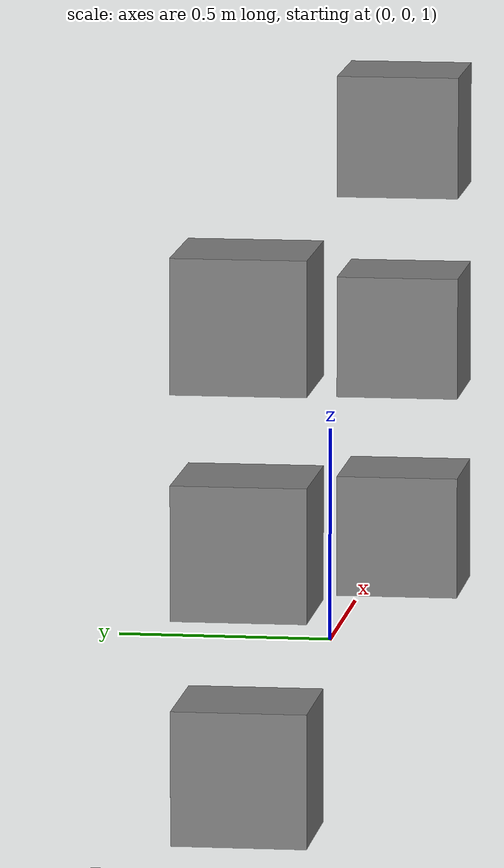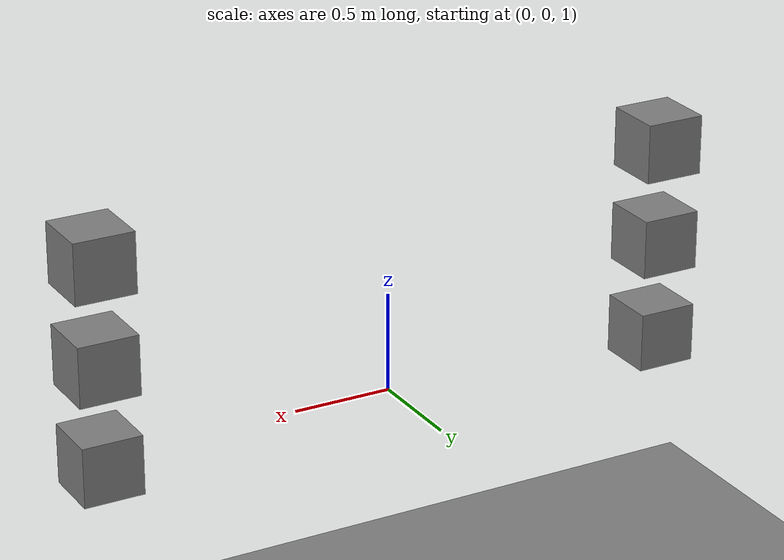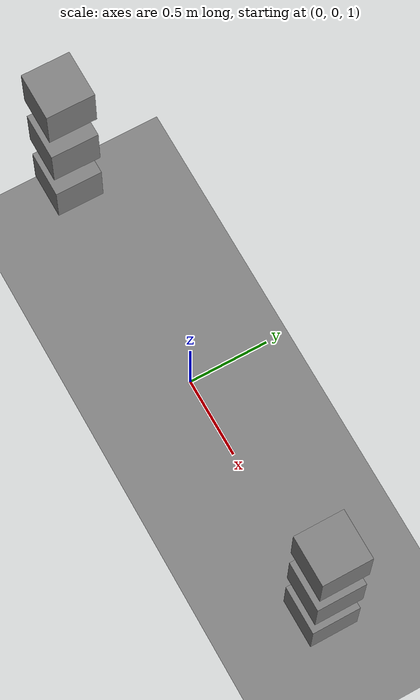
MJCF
<mujoco model="island-groups">
  <option gravity="0 0 -9.81" timestep="0.002" sleep_tolerance="0.05">
    <flag sleep="enable"/>
  </option>
  <worldbody>
    <geom name="floor" type="plane" size="10 10 0.1" solref="0.005 1.5"/>

    <!-- Stack A (left) — dropped from height for visible settling -->
    <body name="a1" pos="-1.5 0 1.0"><freejoint/>
      <geom name="ga1" type="box" size="0.15 0.15 0.15" mass="1" solref="0.005 1.5"/></body>
    <body name="a2" pos="-1.5 0 1.5"><freejoint/>
      <geom name="ga2" type="box" size="0.15 0.15 0.15" mass="1" solref="0.005 1.5"/></body>
    <body name="a3" pos="-1.5 0 2.0"><freejoint/>
      <geom name="ga3" type="box" size="0.15 0.15 0.15" mass="1" solref="0.005 1.5"/></body>

    <!-- Stack B (right) — same heights -->
    <body name="b1" pos="1.5 0 1.0"><freejoint/>
      <geom name="gb1" type="box" size="0.15 0.15 0.15" mass="1" solref="0.005 1.5"/></body>
    <body name="b2" pos="1.5 0 1.5"><freejoint/>
      <geom name="gb2" type="box" size="0.15 0.15 0.15" mass="1" solref="0.005 1.5"/></body>
    <body name="b3" pos="1.5 0 2.0"><freejoint/>
      <geom name="gb3" type="box" size="0.15 0.15 0.15" mass="1" solref="0.005 1.5"/></body>
  </worldbody>
</mujoco>
